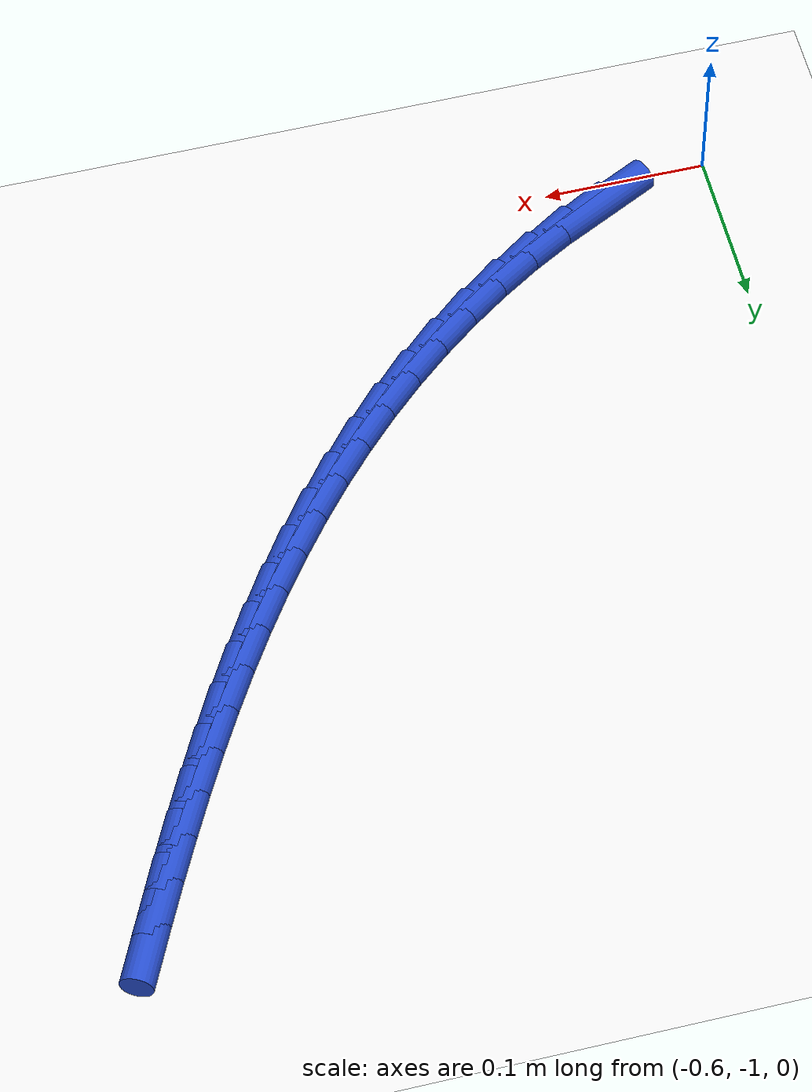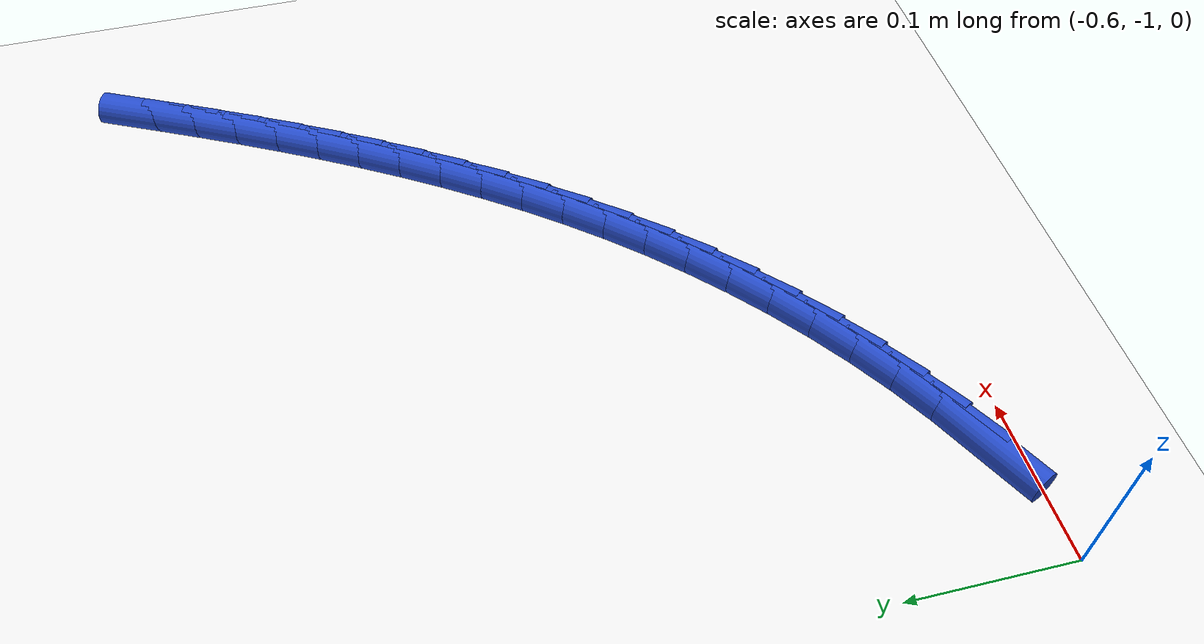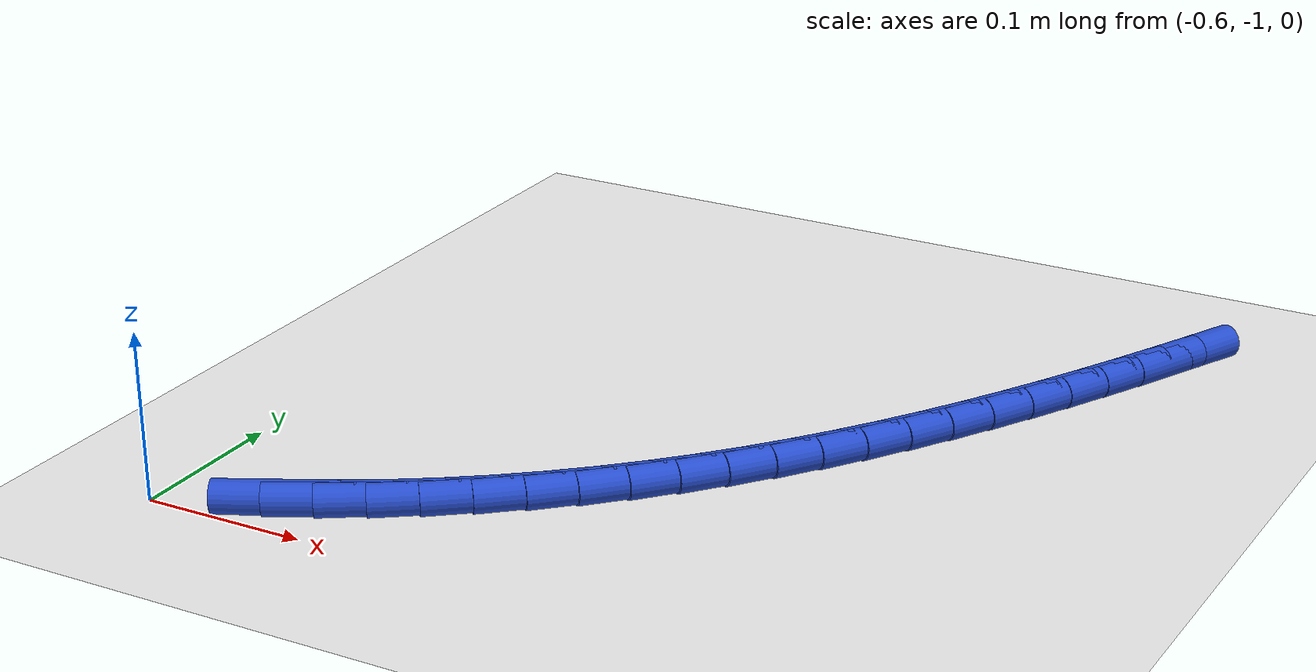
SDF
<sdf version="1.6">
 <world name="default">
  <model name="ground_plane">
   <static>1</static>
   <link name="link">
    <collision name="collision">
     <geometry><plane><normal>0 0 1</normal><size>100 100</size></plane></geometry>
     <surface><friction><ode><mu>100</mu><mu2>50</mu2></ode></friction></surface>
    </collision>
    <visual name="visual">
     <cast_shadows>0</cast_shadows>
     <geometry><plane><normal>0 0 1</normal><size>100 100</size></plane></geometry>
     <material>
      <script><uri>file://media/materials/scripts/gazebo.material</uri><name>Gazebo/WhiteGlow</name></script>
     </material>
    </visual>
   </link>
  </model>
  <model name="line">
   <link name="link_209">
    <pose>-0.5244456166330363 -0.9780556617877182 0.01 0 1.57 0.46125255446945335</pose>
    <collision name="collision">
     <geometry><cylinder><radius>0.01</radius><length>0.08</length></cylinder></geometry>
    </collision>
    <visual name="visual">
     <material>
      <script><name>Gazebo/Blue</name><uri>file://media/materials/scripts/gazebo.material</uri></script>
     </material>
     <geometry><cylinder><radius>0.01</radius><length>0.08</length></cylinder></geometry>
    </visual>
   </link>
   <link name="link_210">
    <pose>-0.49921613719091723 -0.9655163643405584 0.01 0 1.57 0.5153168312946329</pose>
    <collision name="collision">
     <geometry><cylinder><radius>0.01</radius><length>0.08</length></cylinder></geometry>
    </collision>
    <visual name="visual">
     <material>
      <script><name>Gazebo/Blue</name><uri>file://media/materials/scripts/gazebo.material</uri></script>
     </material>
     <geometry><cylinder><radius>0.01</radius><length>0.08</length></cylinder></geometry>
    </visual>
   </link>
   <link name="link_211">
    <pose>-0.4746110289980004 -0.9515810158426171 0.01 0 1.57 0.5667442596080265</pose>
    <collision name="collision">
     <geometry><cylinder><radius>0.01</radius><length>0.08</length></cylinder></geometry>
    </collision>
    <visual name="visual">
     <material>
      <script><name>Gazebo/Blue</name><uri>file://media/materials/scripts/gazebo.material</uri></script>
     </material>
     <geometry><cylinder><radius>0.01</radius><length>0.08</length></cylinder></geometry>
    </visual>
   </link>
   <link name="link_212">
    <pose>-0.4506823949130848 -0.9363531975423245 0.01 0 1.57 0.615818395143356</pose>
    <collision name="collision">
     <geometry><cylinder><radius>0.01</radius><length>0.08</length></cylinder></geometry>
    </collision>
    <visual name="visual">
     <material>
      <script><name>Gazebo/Blue</name><uri>file://media/materials/scripts/gazebo.material</uri></script>
     </material>
     <geometry><cylinder><radius>0.01</radius><length>0.08</length></cylinder></geometry>
    </visual>
   </link>
   <link name="link_213">
    <pose>-0.4274823377949696 -0.91993649068811 0.01 0 1.57 0.6628393650548289</pose>
    <collision name="collision">
     <geometry><cylinder><radius>0.01</radius><length>0.08</length></cylinder></geometry>
    </collision>
    <visual name="visual">
     <material>
      <script><name>Gazebo/Blue</name><uri>file://media/materials/scripts/gazebo.material</uri></script>
     </material>
     <geometry><cylinder><radius>0.01</radius><length>0.08</length></cylinder></geometry>
    </visual>
   </link>
   <link name="link_214">
    <pose>-0.40506296050245366 -0.9024344765284035 0.01 0 1.57 0.7081171815177039</pose>
    <collision name="collision">
     <geometry><cylinder><radius>0.01</radius><length>0.08</length></cylinder></geometry>
    </collision>
    <visual name="visual">
     <material>
      <script><name>Gazebo/Blue</name><uri>file://media/materials/scripts/gazebo.material</uri></script>
     </material>
     <geometry><cylinder><radius>0.01</radius><length>0.08</length></cylinder></geometry>
    </visual>
   </link>
   <link name="link_215">
    <pose>-0.3834763658943359 -0.8839507363116347 0.01 0 1.57 0.7519681898743348</pose>
    <collision name="collision">
     <geometry><cylinder><radius>0.01</radius><length>0.08</length></cylinder></geometry>
    </collision>
    <visual name="visual">
     <material>
      <script><name>Gazebo/Blue</name><uri>file://media/materials/scripts/gazebo.material</uri></script>
     </material>
     <geometry><cylinder><radius>0.01</radius><length>0.08</length></cylinder></geometry>
    </visual>
   </link>
   <link name="link_216">
    <pose>-0.3627746568294154 -0.8645888512862333 0.01 0 1.57 0.7946685709149981</pose>
    <collision name="collision">
     <geometry><cylinder><radius>0.01</radius><length>0.08</length></cylinder></geometry>
    </collision>
    <visual name="visual">
     <material>
      <script><name>Gazebo/Blue</name><uri>file://media/materials/scripts/gazebo.material</uri></script>
     </material>
     <geometry><cylinder><radius>0.01</radius><length>0.08</length></cylinder></geometry>
    </visual>
   </link>
   <link name="link_217">
    <pose>-0.343006343505622 -0.8444505770347177 0.01 0 1.57 0.8356981557590324</pose>
    <collision name="collision">
     <geometry><cylinder><radius>0.01</radius><length>0.08</length></cylinder></geometry>
    </collision>
    <visual name="visual">
     <material>
      <script><name>Gazebo/Blue</name><uri>file://media/materials/scripts/gazebo.material</uri></script>
     </material>
     <geometry><cylinder><radius>0.01</radius><length>0.08</length></cylinder></geometry>
    </visual>
   </link>
   <link name="link_218">
    <pose>-0.3241618592206942 -0.8236081564689771 0.01 0 1.57 0.8743567127945073</pose>
    <collision name="collision">
     <geometry><cylinder><radius>0.01</radius><length>0.08</length></cylinder></geometry>
    </collision>
    <visual name="visual">
     <material>
      <script><name>Gazebo/Blue</name><uri>file://media/materials/scripts/gazebo.material</uri></script>
     </material>
     <geometry><cylinder><radius>0.01</radius><length>0.08</length></cylinder></geometry>
    </visual>
   </link>
   <link name="link_219">
    <pose>-0.30618461164628435 -0.8021099357052851 0.01 0 1.57 0.9104830706720488</pose>
    <collision name="collision">
     <geometry><cylinder><radius>0.01</radius><length>0.08</length></cylinder></geometry>
    </collision>
    <visual name="visual">
     <material>
      <script><name>Gazebo/Blue</name><uri>file://media/materials/scripts/gazebo.material</uri></script>
     </material>
     <geometry><cylinder><radius>0.01</radius><length>0.08</length></cylinder></geometry>
    </visual>
   </link>
   <link name="link_220">
    <pose>-0.28901665696289375 -0.780003574078888 0.01 0 1.57 0.943975731232018</pose>
    <collision name="collision">
     <geometry><cylinder><radius>0.01</radius><length>0.08</length></cylinder></geometry>
    </collision>
    <visual name="visual">
     <material>
      <script><name>Gazebo/Blue</name><uri>file://media/materials/scripts/gazebo.material</uri></script>
     </material>
     <geometry><cylinder><radius>0.01</radius><length>0.08</length></cylinder></geometry>
    </visual>
   </link>
   <link name="link_221">
    <pose>-0.27260005135102344 -0.7573367309250316 0.01 0 1.57 0.9747702562311319</pose>
    <collision name="collision">
     <geometry><cylinder><radius>0.01</radius><length>0.08</length></cylinder></geometry>
    </collision>
    <visual name="visual">
     <material>
      <script><name>Gazebo/Blue</name><uri>file://media/materials/scripts/gazebo.material</uri></script>
     </material>
     <geometry><cylinder><radius>0.01</radius><length>0.08</length></cylinder></geometry>
    </visual>
   </link>
   <link name="link_222">
    <pose>-0.25687685099117485 -0.7341570655789625 0.01 0 1.57 1.0028329786660777</pose>
    <collision name="collision">
     <geometry><cylinder><radius>0.01</radius><length>0.08</length></cylinder></geometry>
    </collision>
    <visual name="visual">
     <material>
      <script><name>Gazebo/Blue</name><uri>file://media/materials/scripts/gazebo.material</uri></script>
     </material>
     <geometry><cylinder><radius>0.01</radius><length>0.08</length></cylinder></geometry>
    </visual>
   </link>
   <link name="link_223">
    <pose>-0.24178911206384915 -0.710512237375927 0.01 0 1.57 1.028154502083841</pose>
    <collision name="collision">
     <geometry><cylinder><radius>0.01</radius><length>0.08</length></cylinder></geometry>
    </collision>
    <visual name="visual">
     <material>
      <script><name>Gazebo/Blue</name><uri>file://media/materials/scripts/gazebo.material</uri></script>
     </material>
     <geometry><cylinder><radius>0.01</radius><length>0.08</length></cylinder></geometry>
    </visual>
   </link>
   <link name="link_224">
    <pose>-0.2272788907495475 -0.6864499056511706 0.01 0 1.57 1.050743428462907</pose>
    <collision name="collision">
     <geometry><cylinder><radius>0.01</radius><length>0.08</length></cylinder></geometry>
    </collision>
    <visual name="visual">
     <material>
      <script><name>Gazebo/Blue</name><uri>file://media/materials/scripts/gazebo.material</uri></script>
     </material>
     <geometry><cylinder><radius>0.01</radius><length>0.08</length></cylinder></geometry>
    </visual>
   </link>
   <link name="link_225">
    <pose>-0.21328824322877116 -0.6620177297399398 0.01 0 1.57 1.0706206050488571</pose>
    <collision name="collision">
     <geometry><cylinder><radius>0.01</radius><length>0.08</length></cylinder></geometry>
    </collision>
    <visual name="visual">
     <material>
      <script><name>Gazebo/Blue</name><uri>file://media/materials/scripts/gazebo.material</uri></script>
     </material>
     <geometry><cylinder><radius>0.01</radius><length>0.08</length></cylinder></geometry>
    </visual>
   </link>
   <link name="link_226">
    <pose>-0.19975922568202137 -0.6372633689774809 0.01 0 1.57 1.0878140510785683</pose>
    <collision name="collision">
     <geometry><cylinder><radius>0.01</radius><length>0.08</length></cylinder></geometry>
    </collision>
    <visual name="visual">
     <material>
      <script><name>Gazebo/Blue</name><uri>file://media/materials/scripts/gazebo.material</uri></script>
     </material>
     <geometry><cylinder><radius>0.01</radius><length>0.08</length></cylinder></geometry>
    </visual>
   </link>
   <link name="link_227">
    <pose>-0.1866338942897993 -0.6122344826990397 0.01 0 1.57 1.1023546257414811</pose>
    <collision name="collision">
     <geometry><cylinder><radius>0.01</radius><length>0.08</length></cylinder></geometry>
    </collision>
    <visual name="visual">
     <material>
      <script><name>Gazebo/Blue</name><uri>file://media/materials/scripts/gazebo.material</uri></script>
     </material>
     <geometry><cylinder><radius>0.01</radius><length>0.08</length></cylinder></geometry>
    </visual>
   </link>
   <link name="link_228">
    <pose>-0.17385430523260625 -0.5869787302398625 0.01 0 1.57 1.114272430079607</pose>
    <collision name="collision">
     <geometry><cylinder><radius>0.01</radius><length>0.08</length></cylinder></geometry>
    </collision>
    <visual name="visual">
     <material>
      <script><name>Gazebo/Blue</name><uri>file://media/materials/scripts/gazebo.material</uri></script>
     </material>
     <geometry><cylinder><radius>0.01</radius><length>0.08</length></cylinder></geometry>
    </visual>
   </link>
   <link name="link_229">
    <pose>-0.16136251469094334 -0.5615437709351954 0.01 0 1.57 1.1235938942500667</pose>
    <collision name="collision">
     <geometry><cylinder><radius>0.01</radius><length>0.08</length></cylinder></geometry>
    </collision>
    <visual name="visual">
     <material>
      <script><name>Gazebo/Blue</name><uri>file://media/materials/scripts/gazebo.material</uri></script>
     </material>
     <geometry><cylinder><radius>0.01</radius><length>0.08</length></cylinder></geometry>
    </visual>
   </link>
  </model>
 </world>
</sdf>
